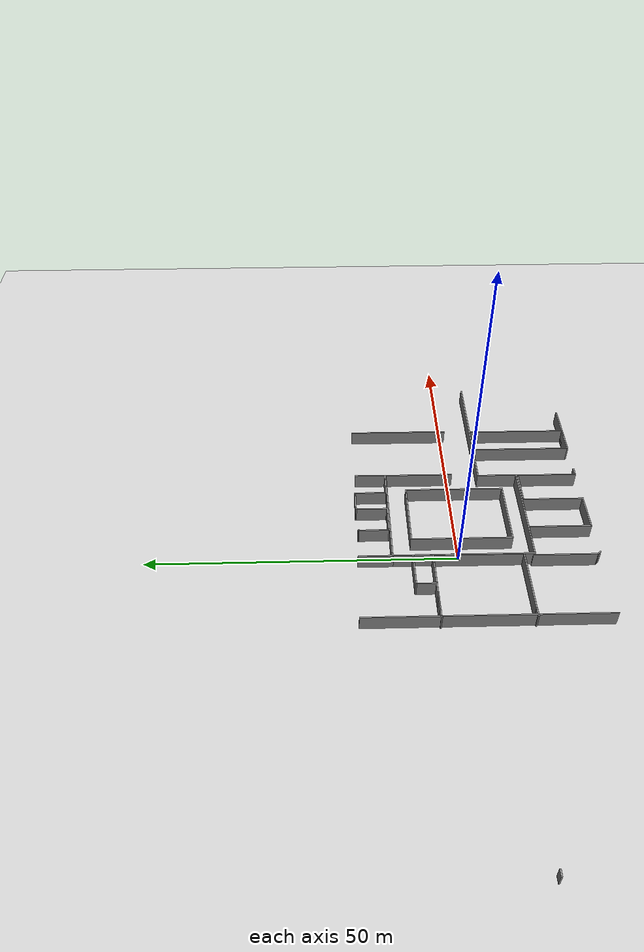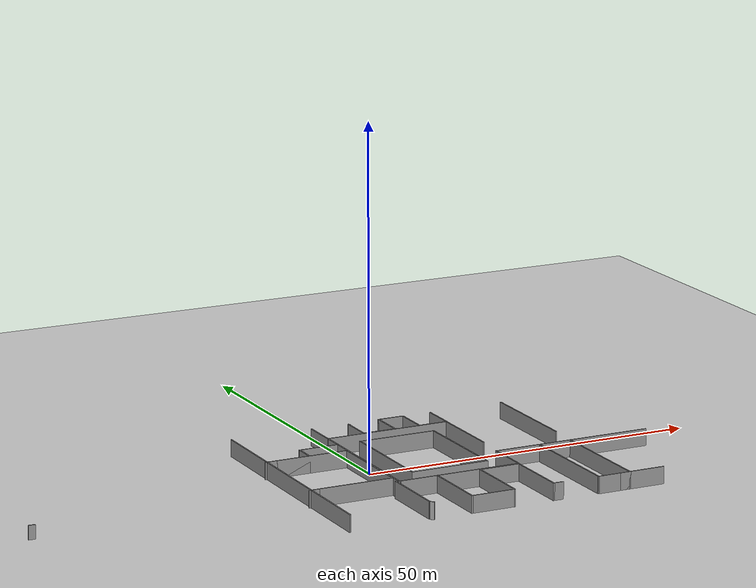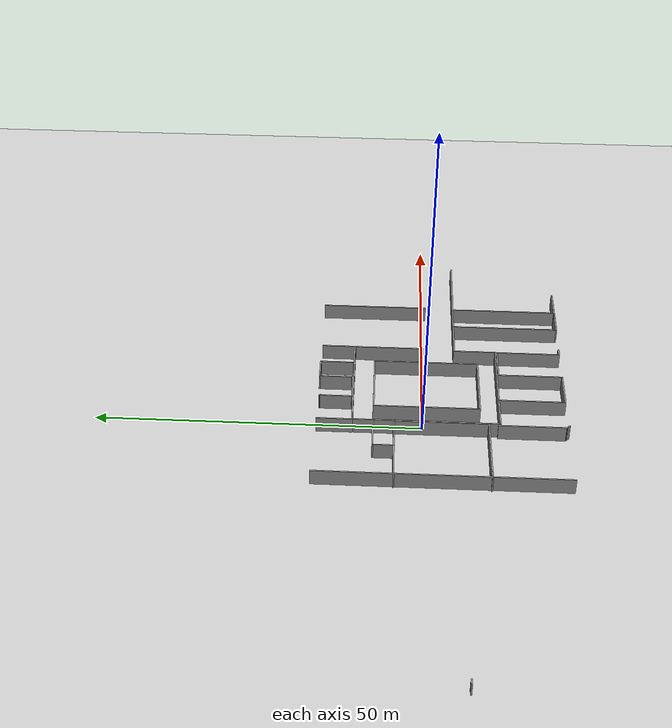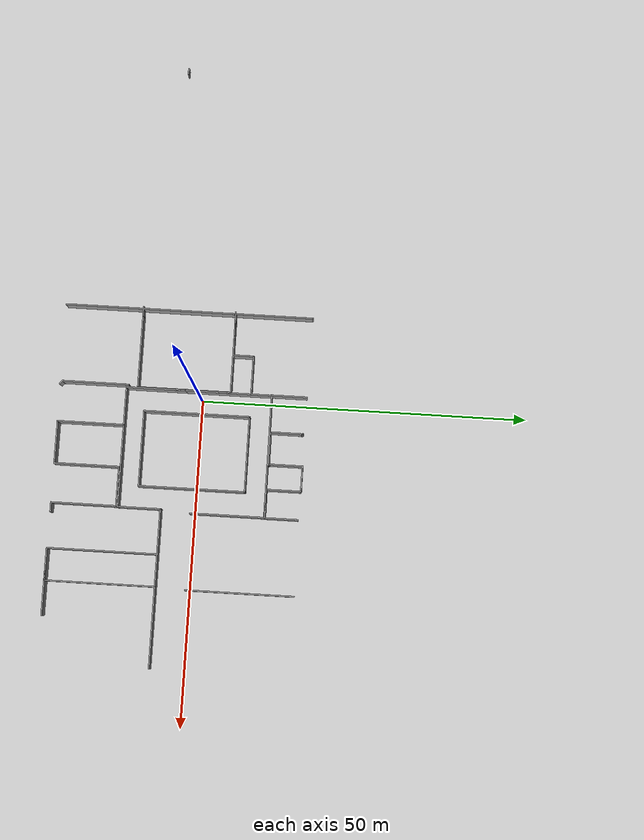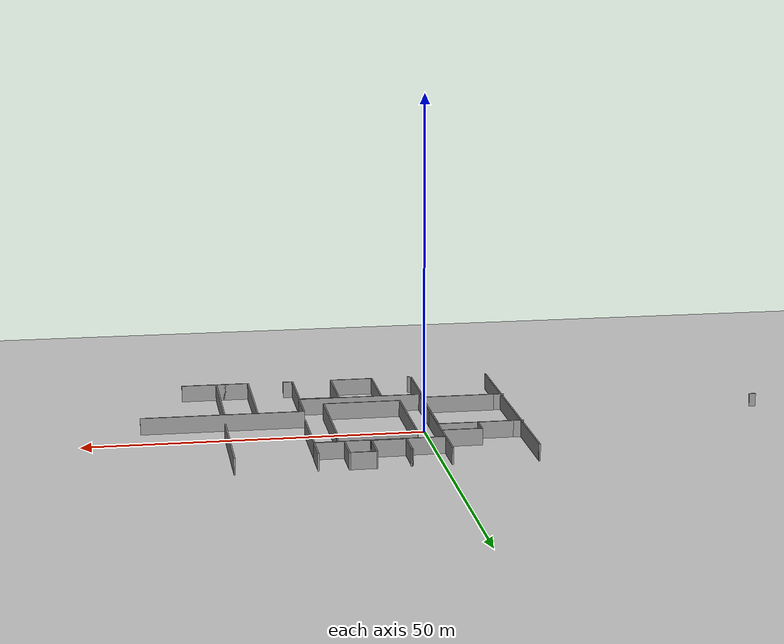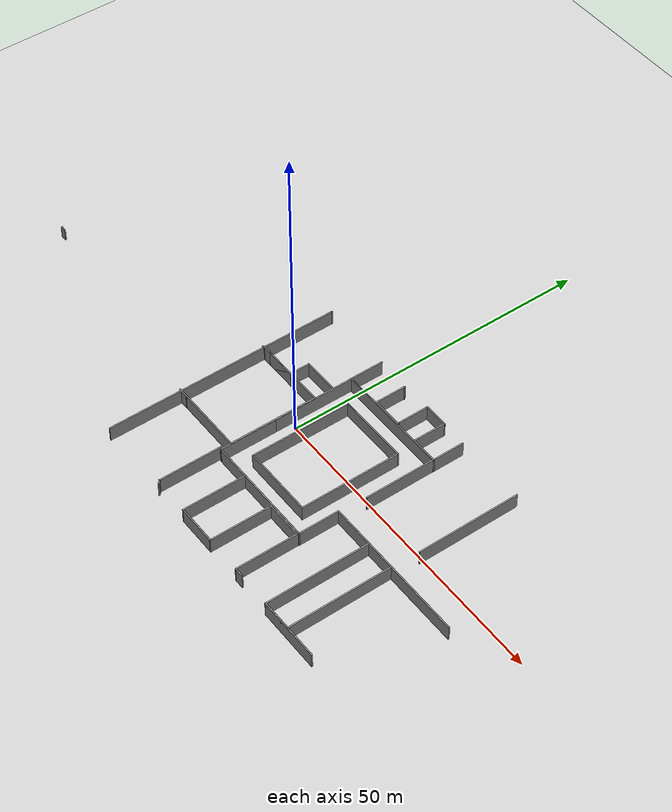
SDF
<sdf version="1.4">
 <world name="default">
  <model name="ground_plane">
   <static>1</static>
   <link name="link">
    <collision name="collision">
     <geometry><plane><normal>0 0 1</normal><size>100 100</size></plane></geometry>
     <surface><friction><ode><mu>100</mu><mu2>50</mu2></ode></friction></surface>
    </collision>
    <visual name="visual">
     <cast_shadows>0</cast_shadows>
     <geometry><plane><normal>0 0 1</normal><size>100 100</size></plane></geometry>
     <material>
      <script><uri>file://media/materials/scripts/gazebo.material</uri><name>Gazebo/Grey</name></script>
     </material>
    </visual>
    <velocity_decay><linear>0</linear><angular>0</angular></velocity_decay>
   </link>
  </model>
  <model name="whittemore6fl">
   <link name="Door_0">
    <collision name="Door_0_Collision">
     <geometry><box><size>1 0.2 2</size></box></geometry>
     <pose>0 0 1 0 -0 0</pose>
    </collision>
    <visual name="Door_0_Visual">
     <pose>0 0 1 0 -0 0</pose>
     <geometry><box><size>1 0.2 2</size></box></geometry>
     <material>
      <script><uri>file://media/materials/scripts/gazebo.material</uri><name>Gazebo/Grey</name></script>
     </material>
    </visual>
    <velocity_decay><linear>0</linear><angular>0</angular></velocity_decay>
    <pose>-60.3234 -5.42792 0 0 -0 0</pose>
   </link>
   <link name="Wall_100">
    <collision name="Wall_100_Collision">
     <geometry><box><size>4.07148 0.2 2.5</size></box></geometry>
     <pose>0 0 1.25 0 -0 0</pose>
    </collision>
    <visual name="Wall_100_Visual">
     <pose>0 0 1.25 0 -0 0</pose>
     <geometry><box><size>4.07148 0.2 2.5</size></box></geometry>
     <material>
      <script><uri>file://media/materials/scripts/gazebo.material</uri><name>Gazebo/Grey</name></script>
     </material>
    </visual>
    <velocity_decay><linear>0</linear><angular>0</angular></velocity_decay>
    <pose>3.17974 16.3018 0 0 -0 3.14159</pose>
   </link>
   <link name="Wall_101">
    <collision name="Wall_101_Collision">
     <geometry><box><size>5.23738 0.2 2.5</size></box></geometry>
     <pose>0 0 1.25 0 -0 0</pose>
    </collision>
    <visual name="Wall_101_Visual">
     <pose>0 0 1.25 0 -0 0</pose>
     <geometry><box><size>5.23738 0.2 2.5</size></box></geometry>
     <material>
      <script><uri>file://media/materials/scripts/gazebo.material</uri><name>Gazebo/Grey</name></script>
     </material>
    </visual>
    <velocity_decay><linear>0</linear><angular>0</angular></velocity_decay>
    <pose>1.244 13.7831 0 0 0 -1.5708</pose>
   </link>
   <link name="Wall_102">
    <collision name="Wall_102_Collision">
     <geometry><box><size>0.369352 0.2 2.5</size></box></geometry>
     <pose>0 0 1.25 0 -0 0</pose>
    </collision>
    <visual name="Wall_102_Visual">
     <pose>0 0 1.25 0 -0 0</pose>
     <geometry><box><size>0.369352 0.2 2.5</size></box></geometry>
     <material>
      <script><uri>file://media/materials/scripts/gazebo.material</uri><name>Gazebo/Grey</name></script>
     </material>
    </visual>
    <velocity_decay><linear>0</linear><angular>0</angular></velocity_decay>
    <pose>1.2917 11.1945 0 0 0 -0.972349</pose>
   </link>
   <link name="Wall_103">
    <collision name="Wall_103_Collision">
     <geometry><box><size>5.23714 0.2 2.5</size></box></geometry>
     <pose>0 0 1.25 0 -0 0</pose>
    </collision>
    <visual name="Wall_103_Visual">
     <pose>0 0 1.25 0 -0 0</pose>
     <geometry><box><size>5.23714 0.2 2.5</size></box></geometry>
     <material>
      <script><uri>file://media/materials/scripts/gazebo.material</uri><name>Gazebo/Grey</name></script>
     </material>
    </visual>
    <velocity_decay><linear>0</linear><angular>0</angular></velocity_decay>
    <pose>-1.17916 11.1245 0 0 -0 3.14159</pose>
   </link>
   <link name="Wall_104">
    <collision name="Wall_104_Collision">
     <geometry><box><size>5.1545 0.2 2.5</size></box></geometry>
     <pose>0 0 1.25 0 -0 0</pose>
    </collision>
    <visual name="Wall_104_Visual">
     <pose>0 0 1.25 0 -0 0</pose>
     <geometry><box><size>5.1545 0.2 2.5</size></box></geometry>
     <material>
      <script><uri>file://media/materials/scripts/gazebo.material</uri><name>Gazebo/Grey</name></script>
     </material>
    </visual>
    <velocity_decay><linear>0</linear><angular>0</angular></velocity_decay>
    <pose>-3.69773 13.6018 0 0 -0 1.5708</pose>
   </link>
   <link name="Wall_105">
    <collision name="Wall_105_Collision">
     <geometry><box><size>0.337674 0.2 2.5</size></box></geometry>
     <pose>0 0 1.25 0 -0 0</pose>
    </collision>
    <visual name="Wall_105_Visual">
     <pose>0 0 1.25 0 -0 0</pose>
     <geometry><box><size>0.337674 0.2 2.5</size></box></geometry>
     <material>
      <script><uri>file://media/materials/scripts/gazebo.material</uri><name>Gazebo/Grey</name></script>
     </material>
    </visual>
    <velocity_decay><linear>0</linear><angular>0</angular></velocity_decay>
    <pose>-3.65405 16.0258 0 0 0 -0.883312</pose>
   </link>
   <link name="Wall_109">
    <collision name="Wall_109_Collision">
     <geometry><box><size>16.669 0.2 2.5</size></box></geometry>
     <pose>0 0 1.25 0 -0 0</pose>
    </collision>
    <visual name="Wall_109_Visual">
     <pose>0 0 1.25 0 -0 0</pose>
     <geometry><box><size>16.669 0.2 2.5</size></box></geometry>
     <material>
      <script><uri>file://media/materials/scripts/gazebo.material</uri><name>Gazebo/Grey</name></script>
     </material>
    </visual>
    <velocity_decay><linear>0</linear><angular>0</angular></velocity_decay>
    <pose>21.0539 7.97885 0 0 0 -1.5708</pose>
   </link>
   <link name="Wall_126">
    <collision name="Wall_126_Collision">
     <geometry><box><size>10.2849 0.2 2.5</size></box></geometry>
     <pose>0 0 1.25 0 -0 0</pose>
    </collision>
    <visual name="Wall_126_Visual">
     <pose>0 0 1.25 0 -0 0</pose>
     <geometry><box><size>10.2849 0.2 2.5</size></box></geometry>
     <material>
      <script><uri>file://media/materials/scripts/gazebo.material</uri><name>Gazebo/Grey</name></script>
     </material>
    </visual>
    <velocity_decay><linear>0</linear><angular>0</angular></velocity_decay>
    <pose>-3.51464 -16.4844 0 0 0 -1.5708</pose>
   </link>
   <link name="Wall_127">
    <collision name="Wall_127_Collision">
     <geometry><box><size>6.67657 0.2 2.5</size></box></geometry>
     <pose>0 0 1.25 0 -0 0</pose>
    </collision>
    <visual name="Wall_127_Visual">
     <pose>0 0 1.25 0 -0 0</pose>
     <geometry><box><size>6.67657 0.2 2.5</size></box></geometry>
     <material>
      <script><uri>file://media/materials/scripts/gazebo.material</uri><name>Gazebo/Grey</name></script>
     </material>
    </visual>
    <velocity_decay><linear>0</linear><angular>0</angular></velocity_decay>
    <pose>-0.276357 -21.5268 0 0 -0 0</pose>
   </link>
   <link name="Wall_128">
    <collision name="Wall_128_Collision">
     <geometry><box><size>10.0999 0.2 2.5</size></box></geometry>
     <pose>0 0 1.25 0 -0 0</pose>
    </collision>
    <visual name="Wall_128_Visual">
     <pose>0 0 1.25 0 -0 0</pose>
     <geometry><box><size>10.0999 0.2 2.5</size></box></geometry>
     <material>
      <script><uri>file://media/materials/scripts/gazebo.material</uri><name>Gazebo/Grey</name></script>
     </material>
    </visual>
    <velocity_decay><linear>0</linear><angular>0</angular></velocity_decay>
    <pose>2.96193 -16.5769 0 0 -0 1.5708</pose>
   </link>
   <link name="Wall_129">
    <collision name="Wall_129_Collision">
     <geometry><box><size>6.21396 0.2 2.5</size></box></geometry>
     <pose>0 0 1.25 0 -0 0</pose>
    </collision>
    <visual name="Wall_129_Visual">
     <pose>0 0 1.25 0 -0 0</pose>
     <geometry><box><size>6.21396 0.2 2.5</size></box></geometry>
     <material>
      <script><uri>file://media/materials/scripts/gazebo.material</uri><name>Gazebo/Grey</name></script>
     </material>
    </visual>
    <velocity_decay><linear>0</linear><angular>0</angular></velocity_decay>
    <pose>5.96891 -11.6269 0 0 -0 0</pose>
   </link>
   <link name="Wall_130">
    <collision name="Wall_130_Collision">
     <geometry><box><size>10.0999 0.2 2.5</size></box></geometry>
     <pose>0 0 1.25 0 -0 0</pose>
    </collision>
    <visual name="Wall_130_Visual">
     <pose>0 0 1.25 0 -0 0</pose>
     <geometry><box><size>10.0999 0.2 2.5</size></box></geometry>
     <material>
      <script><uri>file://media/materials/scripts/gazebo.material</uri><name>Gazebo/Grey</name></script>
     </material>
    </visual>
    <velocity_decay><linear>0</linear><angular>0</angular></velocity_decay>
    <pose>8.97588 -16.5769 0 0 0 -1.5708</pose>
   </link>
   <link name="Wall_131">
    <collision name="Wall_131_Collision">
     <geometry><box><size>1.58784 0.2 2.5</size></box></geometry>
     <pose>0 0 1.25 0 -0 0</pose>
    </collision>
    <visual name="Wall_131_Visual">
     <pose>0 0 1.25 0 -0 0</pose>
     <geometry><box><size>1.58784 0.2 2.5</size></box></geometry>
     <material>
      <script><uri>file://media/materials/scripts/gazebo.material</uri><name>Gazebo/Grey</name></script>
     </material>
    </visual>
    <velocity_decay><linear>0</linear><angular>0</angular></velocity_decay>
    <pose>9.6698 -21.5268 0 0 -0 0</pose>
   </link>
   <link name="Wall_133">
    <collision name="Wall_133_Collision">
     <geometry><box><size>16.854 0.2 2.5</size></box></geometry>
     <pose>0 0 1.25 0 -0 0</pose>
    </collision>
    <visual name="Wall_133_Visual">
     <pose>0 0 1.25 0 -0 0</pose>
     <geometry><box><size>16.854 0.2 2.5</size></box></geometry>
     <material>
      <script><uri>file://media/materials/scripts/gazebo.material</uri><name>Gazebo/Grey</name></script>
     </material>
    </visual>
    <velocity_decay><linear>0</linear><angular>0</angular></velocity_decay>
    <pose>15.9151 -13.2923 0 0 0 -1.5708</pose>
   </link>
   <link name="Wall_134">
    <collision name="Wall_134_Collision">
     <geometry><box><size>10.3775 0.2 2.5</size></box></geometry>
     <pose>0 0 1.25 0 -0 0</pose>
    </collision>
    <visual name="Wall_134_Visual">
     <pose>0 0 1.25 0 -0 0</pose>
     <geometry><box><size>10.3775 0.2 2.5</size></box></geometry>
     <material>
      <script><uri>file://media/materials/scripts/gazebo.material</uri><name>Gazebo/Grey</name></script>
     </material>
    </visual>
    <velocity_decay><linear>0</linear><angular>0</angular></velocity_decay>
    <pose>21.0038 -21.6193 0 0 -0 0</pose>
   </link>
   <link name="Wall_136">
    <collision name="Wall_136_Collision">
     <geometry><box><size>1.58784 0.2 2.5</size></box></geometry>
     <pose>0 0 1.25 0 -0 0</pose>
    </collision>
    <visual name="Wall_136_Visual">
     <pose>0 0 1.25 0 -0 0</pose>
     <geometry><box><size>1.58784 0.2 2.5</size></box></geometry>
     <material>
      <script><uri>file://media/materials/scripts/gazebo.material</uri><name>Gazebo/Grey</name></script>
     </material>
    </visual>
    <velocity_decay><linear>0</linear><angular>0</angular></velocity_decay>
    <pose>20.1248 -21.6193 0 0 -0 0</pose>
   </link>
   <link name="Wall_137">
    <collision name="Wall_137_Collision">
     <geometry><box><size>16.854 0.2 2.5</size></box></geometry>
     <pose>0 0 1.25 0 -0 0</pose>
    </collision>
    <visual name="Wall_137_Visual">
     <pose>0 0 1.25 0 -0 0</pose>
     <geometry><box><size>16.854 0.2 2.5</size></box></geometry>
     <material>
      <script><uri>file://media/materials/scripts/gazebo.material</uri><name>Gazebo/Grey</name></script>
     </material>
    </visual>
    <velocity_decay><linear>0</linear><angular>0</angular></velocity_decay>
    <pose>20.8188 -13.2923 0 0 -0 1.5708</pose>
   </link>
   <link name="Wall_16">
    <collision name="Wall_16_Collision">
     <geometry><box><size>13.2922 0.2 2.5</size></box></geometry>
     <pose>0 0 1.25 0 -0 0</pose>
    </collision>
    <visual name="Wall_16_Visual">
     <pose>0 0 1.25 0 -0 0</pose>
     <geometry><box><size>13.2922 0.2 2.5</size></box></geometry>
     <material>
      <script><uri>file://media/materials/scripts/gazebo.material</uri><name>Gazebo/Grey</name></script>
     </material>
    </visual>
    <velocity_decay><linear>0</linear><angular>0</angular></velocity_decay>
    <pose>-9.36517 4.22767 0 0 0 -1.5708</pose>
   </link>
   <link name="Wall_161">
    <collision name="Wall_161_Collision">
     <geometry><box><size>1.5754 0.2 2.5</size></box></geometry>
     <pose>0 0 1.25 0 -0 0</pose>
    </collision>
    <visual name="Wall_161_Visual">
     <pose>0 0 1.25 0 -0 0</pose>
     <geometry><box><size>1.5754 0.2 2.5</size></box></geometry>
     <material>
      <script><uri>file://media/materials/scripts/gazebo.material</uri><name>Gazebo/Grey</name></script>
     </material>
    </visual>
    <velocity_decay><linear>0</linear><angular>0</angular></velocity_decay>
    <pose>-21.0307 4.59997 0 0 -0 0</pose>
   </link>
   <link name="Wall_163">
    <collision name="Wall_163_Collision">
     <geometry><box><size>0.5174 0.2 2.5</size></box></geometry>
     <pose>0 0 1.25 0 -0 0</pose>
    </collision>
    <visual name="Wall_163_Visual">
     <pose>0 0 1.25 0 -0 0</pose>
     <geometry><box><size>0.5174 0.2 2.5</size></box></geometry>
     <material>
      <script><uri>file://media/materials/scripts/gazebo.material</uri><name>Gazebo/Grey</name></script>
     </material>
    </visual>
    <velocity_decay><linear>0</linear><angular>0</angular></velocity_decay>
    <pose>-21.8242 4.54707 0 0 -0 0</pose>
   </link>
   <link name="Wall_165">
    <collision name="Wall_165_Collision">
     <geometry><box><size>1.6283 0.2 2.5</size></box></geometry>
     <pose>0 0 1.25 0 -0 0</pose>
    </collision>
    <visual name="Wall_165_Visual">
     <pose>0 0 1.25 0 -0 0</pose>
     <geometry><box><size>1.6283 0.2 2.5</size></box></geometry>
     <material>
      <script><uri>file://media/materials/scripts/gazebo.material</uri><name>Gazebo/Grey</name></script>
     </material>
    </visual>
    <velocity_decay><linear>0</linear><angular>0</angular></velocity_decay>
    <pose>-21.3216 -9.68303 0 0 -0 3.14159</pose>
   </link>
   <link name="Wall_17">
    <collision name="Wall_17_Collision">
     <geometry><box><size>9.26371 0.2 2.5</size></box></geometry>
     <pose>0 0 1.25 0 -0 0</pose>
    </collision>
    <visual name="Wall_17_Visual">
     <pose>0 0 1.25 0 -0 0</pose>
     <geometry><box><size>9.26371 0.2 2.5</size></box></geometry>
     <material>
      <script><uri>file://media/materials/scripts/gazebo.material</uri><name>Gazebo/Grey</name></script>
     </material>
    </visual>
    <velocity_decay><linear>0</linear><angular>0</angular></velocity_decay>
    <pose>-9.36517 -6.85028 0 0 0 -1.5708</pose>
   </link>
   <link name="Wall_184">
    <collision name="Wall_184_Collision">
     <geometry><box><size>38.3489 0.2 2.5</size></box></geometry>
     <pose>0 0 1.25 0 -0 0</pose>
    </collision>
    <visual name="Wall_184_Visual">
     <pose>0 0 1.25 0 -0 0</pose>
     <geometry><box><size>38.3489 0.2 2.5</size></box></geometry>
     <material>
      <script><uri>file://media/materials/scripts/gazebo.material</uri><name>Gazebo/Grey</name></script>
     </material>
    </visual>
    <velocity_decay><linear>0</linear><angular>0</angular></velocity_decay>
    <pose>-21.7381 -2.50182 0 0 -0 1.5708</pose>
   </link>
   <link name="Wall_185">
    <collision name="Wall_185_Collision">
     <geometry><box><size>0.21 0.2 2.5</size></box></geometry>
     <pose>0 0 1.25 0 -0 0</pose>
    </collision>
    <visual name="Wall_185_Visual">
     <pose>0 0 1.25 0 -0 0</pose>
     <geometry><box><size>0.21 0.2 2.5</size></box></geometry>
     <material>
      <script><uri>file://media/materials/scripts/gazebo.material</uri><name>Gazebo/Grey</name></script>
     </material>
    </visual>
    <velocity_decay><linear>0</linear><angular>0</angular></velocity_decay>
    <pose>-21.7331 16.5726 0 0 -0 0</pose>
   </link>
   <link name="Wall_19">
    <collision name="Wall_19_Collision">
     <geometry><box><size>18.9045 0.2 2.5</size></box></geometry>
     <pose>0 0 1.25 0 -0 0</pose>
    </collision>
    <visual name="Wall_19_Visual">
     <pose>0 0 1.25 0 -0 0</pose>
     <geometry><box><size>18.9045 0.2 2.5</size></box></geometry>
     <material>
      <script><uri>file://media/materials/scripts/gazebo.material</uri><name>Gazebo/Grey</name></script>
     </material>
    </visual>
    <velocity_decay><linear>0</linear><angular>0</angular></velocity_decay>
    <pose>0.062296 10.9572 0 0 -0 0</pose>
   </link>
   <link name="Wall_20">
    <collision name="Wall_20_Collision">
     <geometry><box><size>11.4596 0.2 2.5</size></box></geometry>
     <pose>0 0 1.25 0 -0 0</pose>
    </collision>
    <visual name="Wall_20_Visual">
     <pose>0 0 1.25 0 -0 0</pose>
     <geometry><box><size>11.4596 0.2 2.5</size></box></geometry>
     <material>
      <script><uri>file://media/materials/scripts/gazebo.material</uri><name>Gazebo/Grey</name></script>
     </material>
    </visual>
    <velocity_decay><linear>0</linear><angular>0</angular></velocity_decay>
    <pose>9.41453 5.32744 0 0 0 -1.5708</pose>
   </link>
   <link name="Wall_27">
    <collision name="Wall_27_Collision">
     <geometry><box><size>24.212 0.2 2.5</size></box></geometry>
     <pose>0 0 1.25 0 -0 0</pose>
    </collision>
    <visual name="Wall_27_Visual">
     <pose>0 0 1.25 0 -0 0</pose>
     <geometry><box><size>24.212 0.2 2.5</size></box></geometry>
     <material>
      <script><uri>file://media/materials/scripts/gazebo.material</uri><name>Gazebo/Grey</name></script>
     </material>
    </visual>
    <velocity_decay><linear>0</linear><angular>0</angular></velocity_decay>
    <pose>21.0517 -4.86161 0 0 -0 3.14159</pose>
   </link>
   <link name="Wall_28">
    <collision name="Wall_28_Collision">
     <geometry><box><size>6.71873 0.2 2.5</size></box></geometry>
     <pose>0 0 1.25 0 -0 0</pose>
    </collision>
    <visual name="Wall_28_Visual">
     <pose>0 0 1.25 0 -0 0</pose>
     <geometry><box><size>6.71873 0.2 2.5</size></box></geometry>
     <material>
      <script><uri>file://media/materials/scripts/gazebo.material</uri><name>Gazebo/Grey</name></script>
     </material>
    </visual>
    <velocity_decay><linear>0</linear><angular>0</angular></velocity_decay>
    <pose>9.04564 -8.12098 0 0 0 -1.5708</pose>
   </link>
   <link name="Wall_29">
    <collision name="Wall_29_Collision">
     <geometry><box><size>18.5244 0.2 2.5</size></box></geometry>
     <pose>0 0 1.25 0 -0 0</pose>
    </collision>
    <visual name="Wall_29_Visual">
     <pose>0 0 1.25 0 -0 0</pose>
     <geometry><box><size>18.5244 0.2 2.5</size></box></geometry>
     <material>
      <script><uri>file://media/materials/scripts/gazebo.material</uri><name>Gazebo/Grey</name></script>
     </material>
    </visual>
    <velocity_decay><linear>0</linear><angular>0</angular></velocity_decay>
    <pose>-0.116536 -11.3803 0 0 -0 3.14159</pose>
   </link>
   <link name="Wall_30">
    <collision name="Wall_30_Collision">
     <geometry><box><size>0.21 0.2 2.5</size></box></geometry>
     <pose>0 0 1.25 0 -0 0</pose>
    </collision>
    <visual name="Wall_30_Visual">
     <pose>0 0 1.25 0 -0 0</pose>
     <geometry><box><size>0.21 0.2 2.5</size></box></geometry>
     <material>
      <script><uri>file://media/materials/scripts/gazebo.material</uri><name>Gazebo/Grey</name></script>
     </material>
    </visual>
    <velocity_decay><linear>0</linear><angular>0</angular></velocity_decay>
    <pose>-9.27371 -11.3803 0 0 -0 0</pose>
   </link>
   <link name="Wall_54">
    <collision name="Wall_54_Collision">
     <geometry><box><size>16.3821 0.2 2.5</size></box></geometry>
     <pose>0 0 1.25 0 -0 0</pose>
    </collision>
    <visual name="Wall_54_Visual">
     <pose>0 0 1.25 0 -0 0</pose>
     <geometry><box><size>16.3821 0.2 2.5</size></box></geometry>
     <material>
      <script><uri>file://media/materials/scripts/gazebo.material</uri><name>Gazebo/Grey</name></script>
     </material>
    </visual>
    <velocity_decay><linear>0</linear><angular>0</angular></velocity_decay>
    <pose>-5.86482 -0.338204 0 0 0 -1.5708</pose>
   </link>
   <link name="Wall_55">
    <collision name="Wall_55_Collision">
     <geometry><box><size>11.7586 0.2 2.5</size></box></geometry>
     <pose>0 0 1.25 0 -0 0</pose>
    </collision>
    <visual name="Wall_55_Visual">
     <pose>0 0 1.25 0 -0 0</pose>
     <geometry><box><size>11.7586 0.2 2.5</size></box></geometry>
     <material>
      <script><uri>file://media/materials/scripts/gazebo.material</uri><name>Gazebo/Grey</name></script>
     </material>
    </visual>
    <velocity_decay><linear>0</linear><angular>0</angular></velocity_decay>
    <pose>-0.085491 -8.42926 0 0 -0 0</pose>
   </link>
   <link name="Wall_56">
    <collision name="Wall_56_Collision">
     <geometry><box><size>16.3821 0.2 2.5</size></box></geometry>
     <pose>0 0 1.25 0 -0 0</pose>
    </collision>
    <visual name="Wall_56_Visual">
     <pose>0 0 1.25 0 -0 0</pose>
     <geometry><box><size>16.3821 0.2 2.5</size></box></geometry>
     <material>
      <script><uri>file://media/materials/scripts/gazebo.material</uri><name>Gazebo/Grey</name></script>
     </material>
    </visual>
    <velocity_decay><linear>0</linear><angular>0</angular></velocity_decay>
    <pose>5.69383 -0.338204 0 0 -0 1.5708</pose>
   </link>
   <link name="Wall_57">
    <collision name="Wall_57_Collision">
     <geometry><box><size>11.635 0.2 2.5</size></box></geometry>
     <pose>0 0 1.25 0 -0 0</pose>
    </collision>
    <visual name="Wall_57_Visual">
     <pose>0 0 1.25 0 -0 0</pose>
     <geometry><box><size>11.635 0.2 2.5</size></box></geometry>
     <material>
      <script><uri>file://media/materials/scripts/gazebo.material</uri><name>Gazebo/Grey</name></script>
     </material>
    </visual>
    <velocity_decay><linear>0</linear><angular>0</angular></velocity_decay>
    <pose>-0.023668 7.75285 0 0 -0 3.14159</pose>
   </link>
   <link name="Wall_76">
    <collision name="Wall_76_Collision">
     <geometry><box><size>10.308 0.2 2.5</size></box></geometry>
     <pose>0 0 1.25 0 -0 0</pose>
    </collision>
    <visual name="Wall_76_Visual">
     <pose>0 0 1.25 0 -0 0</pose>
     <geometry><box><size>10.308 0.2 2.5</size></box></geometry>
     <material>
      <script><uri>file://media/materials/scripts/gazebo.material</uri><name>Gazebo/Grey</name></script>
     </material>
    </visual>
    <velocity_decay><linear>0</linear><angular>0</angular></velocity_decay>
    <pose>-9.76414 -16.1849 0 0 0 -1.5708</pose>
   </link>
   <link name="Wall_77">
    <collision name="Wall_77_Collision">
     <geometry><box><size>0.804151 0.2 2.5</size></box></geometry>
     <pose>0 0 1.25 0 -0 0</pose>
    </collision>
    <visual name="Wall_77_Visual">
     <pose>0 0 1.25 0 -0 0</pose>
     <geometry><box><size>0.804151 0.2 2.5</size></box></geometry>
     <material>
      <script><uri>file://media/materials/scripts/gazebo.material</uri><name>Gazebo/Grey</name></script>
     </material>
    </visual>
    <velocity_decay><linear>0</linear><angular>0</angular></velocity_decay>
    <pose>-9.54799 -21.4499 0 0 0 -0.773352</pose>
   </link>
   <link name="Wall_79">
    <collision name="Wall_79_Collision">
     <geometry><box><size>5.58694 0.2 2.5</size></box></geometry>
     <pose>0 0 1.25 0 -0 0</pose>
    </collision>
    <visual name="Wall_79_Visual">
     <pose>0 0 1.25 0 -0 0</pose>
     <geometry><box><size>5.58694 0.2 2.5</size></box></geometry>
     <material>
      <script><uri>file://media/materials/scripts/gazebo.material</uri><name>Gazebo/Grey</name></script>
     </material>
    </visual>
    <velocity_decay><linear>0</linear><angular>0</angular></velocity_decay>
    <pose>-9.40345 13.6048 0 0 -0 1.5708</pose>
   </link>
   <link name="Wall_81">
    <collision name="Wall_81_Collision">
     <geometry><box><size>6.0067 0.2 2.5</size></box></geometry>
     <pose>0 0 1.25 0 -0 0</pose>
    </collision>
    <visual name="Wall_81_Visual">
     <pose>0 0 1.25 0 -0 0</pose>
     <geometry><box><size>6.0067 0.2 2.5</size></box></geometry>
     <material>
      <script><uri>file://media/materials/scripts/gazebo.material</uri><name>Gazebo/Grey</name></script>
     </material>
    </visual>
    <velocity_decay><linear>0</linear><angular>0</angular></velocity_decay>
    <pose>-12.3768 7.76308 0 0 -0 3.14159</pose>
   </link>
   <link name="Wall_82">
    <collision name="Wall_82_Collision">
     <geometry><box><size>3.34821 0.2 2.5</size></box></geometry>
     <pose>0 0 1.25 0 -0 0</pose>
    </collision>
    <visual name="Wall_82_Visual">
     <pose>0 0 1.25 0 -0 0</pose>
     <geometry><box><size>3.34821 0.2 2.5</size></box></geometry>
     <material>
      <script><uri>file://media/materials/scripts/gazebo.material</uri><name>Gazebo/Grey</name></script>
     </material>
    </visual>
    <velocity_decay><linear>0</linear><angular>0</angular></velocity_decay>
    <pose>-15.2801 6.18898 0 0 0 -1.5708</pose>
   </link>
   <link name="Wall_83">
    <collision name="Wall_83_Collision">
     <geometry><box><size>5.37706 0.2 2.5</size></box></geometry>
     <pose>0 0 1.25 0 -0 0</pose>
    </collision>
    <visual name="Wall_83_Visual">
     <pose>0 0 1.25 0 -0 0</pose>
     <geometry><box><size>5.37706 0.2 2.5</size></box></geometry>
     <material>
      <script><uri>file://media/materials/scripts/gazebo.material</uri><name>Gazebo/Grey</name></script>
     </material>
    </visual>
    <velocity_decay><linear>0</linear><angular>0</angular></velocity_decay>
    <pose>-17.8686 4.61487 0 0 -0 3.14159</pose>
   </link>
   <link name="Wall_84">
    <collision name="Wall_84_Collision">
     <geometry><box><size>11.1838 0.2 2.5</size></box></geometry>
     <pose>0 0 1.25 0 -0 0</pose>
    </collision>
    <visual name="Wall_84_Visual">
     <pose>0 0 1.25 0 -0 0</pose>
     <geometry><box><size>11.1838 0.2 2.5</size></box></geometry>
     <material>
      <script><uri>file://media/materials/scripts/gazebo.material</uri><name>Gazebo/Grey</name></script>
     </material>
    </visual>
    <velocity_decay><linear>0</linear><angular>0</angular></velocity_decay>
    <pose>-14.9653 4.61487 0 0 -0 0</pose>
   </link>
   <link name="Wall_85">
    <collision name="Wall_85_Collision">
     <geometry><box><size>14.4719 0.2 2.5</size></box></geometry>
     <pose>0 0 1.25 0 -0 0</pose>
    </collision>
    <visual name="Wall_85_Visual">
     <pose>0 0 1.25 0 -0 0</pose>
     <geometry><box><size>14.4719 0.2 2.5</size></box></geometry>
     <material>
      <script><uri>file://media/materials/scripts/gazebo.material</uri><name>Gazebo/Grey</name></script>
     </material>
    </visual>
    <velocity_decay><linear>0</linear><angular>0</angular></velocity_decay>
    <pose>-9.47341 -2.52107 0 0 0 -1.5708</pose>
   </link>
   <link name="Wall_86">
    <collision name="Wall_86_Collision">
     <geometry><box><size>11.2123 0.2 2.5</size></box></geometry>
     <pose>0 0 1.25 0 -0 0</pose>
    </collision>
    <visual name="Wall_86_Visual">
     <pose>0 0 1.25 0 -0 0</pose>
     <geometry><box><size>11.2123 0.2 2.5</size></box></geometry>
     <material>
      <script><uri>file://media/materials/scripts/gazebo.material</uri><name>Gazebo/Grey</name></script>
     </material>
    </visual>
    <velocity_decay><linear>0</linear><angular>0</angular></velocity_decay>
    <pose>-14.9795 -9.65702 0 0 -0 3.14159</pose>
   </link>
   <link name="Wall_87">
    <collision name="Wall_87_Collision">
     <geometry><box><size>0.21 0.2 2.5</size></box></geometry>
     <pose>0 0 1.25 0 -0 0</pose>
    </collision>
    <visual name="Wall_87_Visual">
     <pose>0 0 1.25 0 -0 0</pose>
     <geometry><box><size>0.21 0.2 2.5</size></box></geometry>
     <material>
      <script><uri>file://media/materials/scripts/gazebo.material</uri><name>Gazebo/Grey</name></script>
     </material>
    </visual>
    <velocity_decay><linear>0</linear><angular>0</angular></velocity_decay>
    <pose>-20.4807 -9.65702 0 0 -0 0</pose>
   </link>
   <link name="Wall_97">
    <collision name="Wall_97_Collision">
     <geometry><box><size>5.23714 0.2 2.5</size></box></geometry>
     <pose>0 0 1.25 0 -0 0</pose>
    </collision>
    <visual name="Wall_97_Visual">
     <pose>0 0 1.25 0 -0 0</pose>
     <geometry><box><size>5.23714 0.2 2.5</size></box></geometry>
     <material>
      <script><uri>file://media/materials/scripts/gazebo.material</uri><name>Gazebo/Grey</name></script>
     </material>
    </visual>
    <velocity_decay><linear>0</linear><angular>0</angular></velocity_decay>
    <pose>9.45302 13.5635 0 0 0 -1.5708</pose>
   </link>
   <link name="Wall_98">
    <collision name="Wall_98_Collision">
     <geometry><box><size>4.53754 0.2 2.5</size></box></geometry>
     <pose>0 0 1.25 0 -0 0</pose>
    </collision>
    <visual name="Wall_98_Visual">
     <pose>0 0 1.25 0 -0 0</pose>
     <geometry><box><size>4.53754 0.2 2.5</size></box></geometry>
     <material>
      <script><uri>file://media/materials/scripts/gazebo.material</uri><name>Gazebo/Grey</name></script>
     </material>
    </visual>
    <velocity_decay><linear>0</linear><angular>0</angular></velocity_decay>
    <pose>7.28425 11.045 0 0 -0 3.14159</pose>
   </link>
   <link name="Wall_99">
    <collision name="Wall_99_Collision">
     <geometry><box><size>5.45687 0.2 2.5</size></box></geometry>
     <pose>0 0 1.25 0 -0 0</pose>
    </collision>
    <visual name="Wall_99_Visual">
     <pose>0 0 1.25 0 -0 0</pose>
     <geometry><box><size>5.45687 0.2 2.5</size></box></geometry>
     <material>
      <script><uri>file://media/materials/scripts/gazebo.material</uri><name>Gazebo/Grey</name></script>
     </material>
    </visual>
    <velocity_decay><linear>0</linear><angular>0</angular></velocity_decay>
    <pose>5.11548 13.6734 0 0 -0 1.5708</pose>
   </link>
   <static>1</static>
   <pose>8.13828 -0.265407 0 0 -0 0</pose>
  </model>
 </world>
</sdf>
